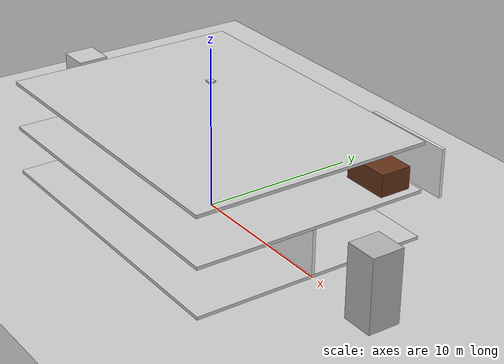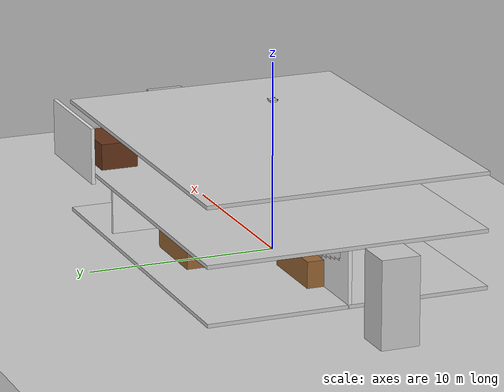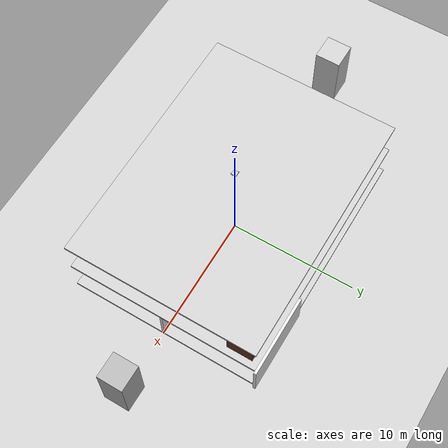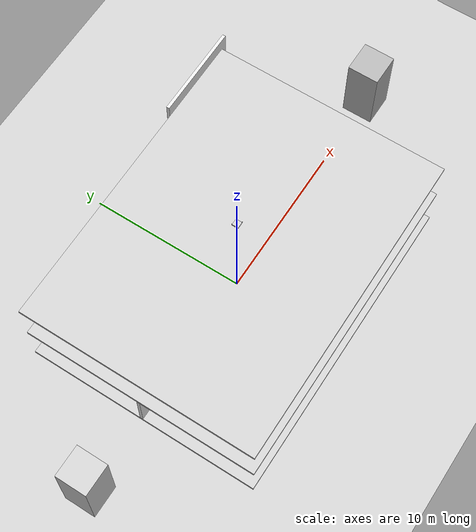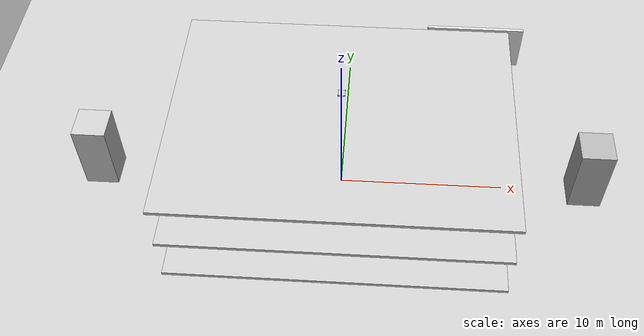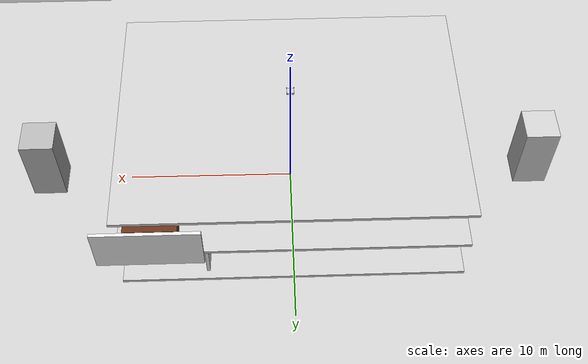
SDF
<?xml version="1.0"?>
<sdf version="1.6">
  <world name="office_building">
    <!-- Physics settings -->
    <physics name="default_physics" default="0" type="ode">
      <max_step_size>0.001</max_step_size>
      <real_time_factor>1</real_time_factor>
      <real_time_update_rate>1000</real_time_update_rate>
      <gravity>0 0 -9.81</gravity>
    </physics>

    <!-- Lighting -->
    <include>
      <uri>model://sun</uri>
    </include>

    <!-- Ground plane -->
    <include>
      <uri>model://ground_plane</uri>
    </include>

    <!-- Office Building Structure -->

    <!-- Ground Floor -->
    <!-- Main Lobby -->
    <model name="lobby_floor">
      <pose>0 0 0.1 0 0 0</pose>
      <link name="lobby_floor_link">
        <collision name="collision">
          <geometry>
            <box>
              <size>20 15 0.2</size>
            </box>
          </geometry>
        </collision>
        <visual name="visual">
          <geometry>
            <box>
              <size>20 15 0.2</size>
            </box>
          </geometry>
          <material>
            <ambient>0.8 0.8 0.8 1</ambient>
            <diffuse>0.8 0.8 0.8 1</diffuse>
          </material>
        </visual>
      </link>
    </model>

    <!-- Lobby Walls -->
    <model name="lobby_walls">
      <pose>0 0 1.5 0 0 0</pose>
      <link name="lobby_walls_link">
        <collision name="collision">
          <geometry>
            <box>
              <size>20 0.2 3</size>
            </box>
          </geometry>
        </collision>
        <visual name="visual">
          <geometry>
            <box>
              <size>20 0.2 3</size>
            </box>
          </geometry>
          <material>
            <ambient>0.9 0.9 0.9 1</ambient>
            <diffuse>0.9 0.9 0.9 1</diffuse>
          </material>
        </visual>
      </link>
    </model>

    <!-- Reception Desk -->
    <model name="reception_desk">
      <pose>0 5 0.8 0 0 0</pose>
      <link name="desk_link">
        <collision name="collision">
          <geometry>
            <box>
              <size>4 1 1.6</size>
            </box>
          </geometry>
        </collision>
        <visual name="visual">
          <geometry>
            <box>
              <size>4 1 1.6</size>
            </box>
          </geometry>
          <material>
            <ambient>0.6 0.4 0.2 1</ambient>
            <diffuse>0.6 0.4 0.2 1</diffuse>
          </material>
        </visual>
      </link>
    </model>

    <!-- First Floor -->
    <!-- Office Floor -->
    <model name="first_floor">
      <pose>0 0 3.1 0 0 0</pose>
      <link name="first_floor_link">
        <collision name="collision">
          <geometry>
            <box>
              <size>20 15 0.2</size>
            </box>
          </geometry>
        </collision>
        <visual name="visual">
          <geometry>
            <box>
              <size>20 15 0.2</size>
            </box>
          </geometry>
          <material>
            <ambient>0.8 0.8 0.8 1</ambient>
            <diffuse>0.8 0.8 0.8 1</diffuse>
          </material>
        </visual>
      </link>
    </model>

    <!-- Office Rooms -->
    <model name="office_room_1">
      <pose>5 5 1.5 0 0 0</pose>
      <link name="office_wall_1">
        <collision name="collision">
          <geometry>
            <box>
              <size>0.2 4 3</size>
            </box>
          </geometry>
        </collision>
        <visual name="visual">
          <geometry>
            <box>
              <size>0.2 4 3</size>
            </box>
          </geometry>
          <material>
            <ambient>0.9 0.9 0.9 1</ambient>
            <diffuse>0.9 0.9 0.9 1</diffuse>
          </material>
        </visual>
      </link>
    </model>

    <!-- Office Desk -->
    <model name="office_desk_1">
      <pose>5 3 0.8 0 0 0</pose>
      <link name="desk_link">
        <collision name="collision">
          <geometry>
            <box>
              <size>2 1 1.6</size>
            </box>
          </geometry>
        </collision>
        <visual name="visual">
          <geometry>
            <box>
              <size>2 1 1.6</size>
            </box>
          </geometry>
          <material>
            <ambient>0.6 0.4 0.2 1</ambient>
            <diffuse>0.6 0.4 0.2 1</diffuse>
          </material>
        </visual>
      </link>
    </model>

    <!-- Conference Room -->
    <model name="conference_room">
      <pose>-5 0 1.5 0 0 0</pose>
      <link name="conference_wall_1">
        <collision name="collision">
          <geometry>
            <box>
              <size>8 0.2 3</size>
            </box>
          </geometry>
        </collision>
        <visual name="visual">
          <geometry>
            <box>
              <size>8 0.2 3</size>
            </box>
          </geometry>
          <material>
            <ambient>0.9 0.9 0.9 1</ambient>
            <diffuse>0.9 0.9 0.9 1</diffuse>
          </material>
        </visual>
      </link>
    </model>

    <!-- Conference Table -->
    <model name="conference_table">
      <pose>-5 0 0.8 0 0 0</pose>
      <link name="table_link">
        <collision name="collision">
          <geometry>
            <box>
              <size>4 2 1.6</size>
            </box>
          </geometry>
        </collision>
        <visual name="visual">
          <geometry>
            <box>
              <size>4 2 1.6</size>
            </box>
          </geometry>
          <material>
            <ambient>0.6 0.4 0.2 1</ambient>
            <diffuse>0.6 0.4 0.2 1</diffuse>
          </material>
        </visual>
      </link>
    </model>

    <!-- Second Floor -->
    <!-- Executive Floor -->
    <model name="second_floor">
      <pose>0 0 6.1 0 0 0</pose>
      <link name="second_floor_link">
        <collision name="collision">
          <geometry>
            <box>
              <size>20 15 0.2</size>
            </box>
          </geometry>
        </collision>
        <visual name="visual">
          <geometry>
            <box>
              <size>20 15 0.2</size>
            </box>
          </geometry>
          <material>
            <ambient>0.8 0.8 0.8 1</ambient>
            <diffuse>0.8 0.8 0.8 1</diffuse>
          </material>
        </visual>
      </link>
    </model>

    <!-- Executive Office -->
    <model name="executive_office">
      <pose>8 8 4.5 0 0 0</pose>
      <link name="executive_wall_1">
        <collision name="collision">
          <geometry>
            <box>
              <size>6 0.2 3</size>
            </box>
          </geometry>
        </collision>
        <visual name="visual">
          <geometry>
            <box>
              <size>6 0.2 3</size>
            </box>
          </geometry>
          <material>
            <ambient>0.9 0.9 0.9 1</ambient>
            <diffuse>0.9 0.9 0.9 1</diffuse>
          </material>
        </visual>
      </link>
    </model>

    <!-- Executive Desk -->
    <model name="executive_desk">
      <pose>8 6 3.8 0 0 0</pose>
      <link name="executive_desk_link">
        <collision name="collision">
          <geometry>
            <box>
              <size>3 2 1.6</size>
            </box>
          </geometry>
        </collision>
        <visual name="visual">
          <geometry>
            <box>
              <size>3 2 1.6</size>
            </box>
          </geometry>
          <material>
            <ambient>0.4 0.2 0.1 1</ambient>
            <diffuse>0.4 0.2 0.1 1</diffuse>
          </material>
        </visual>
      </link>
    </model>

    <!-- Stairwell -->
    <model name="stairwell">
      <pose>15 0 1.5 0 0 0</pose>
      <link name="stairwell_wall">
        <collision name="collision">
          <geometry>
            <box>
              <size>2 2 6</size>
            </box>
          </geometry>
        </collision>
        <visual name="visual">
          <geometry>
            <box>
              <size>2 2 6</size>
            </box>
          </geometry>
          <material>
            <ambient>0.7 0.7 0.7 1</ambient>
            <diffuse>0.7 0.7 0.7 1</diffuse>
          </material>
        </visual>
      </link>
    </model>

    <!-- Elevator -->
    <model name="elevator">
      <pose>-15 0 1.5 0 0 0</pose>
      <link name="elevator_wall">
        <collision name="collision">
          <geometry>
            <box>
              <size>2 2 6</size>
            </box>
          </geometry>
        </collision>
        <visual name="visual">
          <geometry>
            <box>
              <size>2 2 6</size>
            </box>
          </geometry>
          <material>
            <ambient>0.8 0.8 0.8 1</ambient>
            <diffuse>0.8 0.8 0.8 1</diffuse>
          </material>
        </visual>
      </link>
    </model>

    <!-- Lighting -->
    <!-- Ceiling Lights -->
    <model name="ceiling_light_1">
      <pose>0 0 5.5 0 0 0</pose>
      <link name="light_link">
        <visual name="visual">
          <geometry>
            <sphere>
              <radius>0.5</radius>
            </sphere>
          </geometry>
          <material>
            <ambient>1 1 1 1</ambient>
            <diffuse>1 1 1 1</diffuse>
            <emissive>1 1 1 1</emissive>
          </material>
        </visual>
      </link>
      <light type="point" name="ceiling_light_1">
        <pose>0 0 0 0 0 0</pose>
        <diffuse>1 1 1 1</diffuse>
        <specular>0.1 0.1 0.1 1</specular>
        <attenuation>
          <range>10</range>
          <constant>0.5</constant>
          <linear>0.01</linear>
          <quadratic>0.001</quadratic>
        </attenuation>
        <cast_shadows>true</cast_shadows>
      </light>
    </model>

    <!-- Spawn quadcopter -->
    <include>
      <uri>model://quadcopter</uri>
      <pose>0 0 8 0 0 0</pose>
    </include>

    <!-- GUI settings -->
    <gui fullscreen='0'>
      <camera name='user_camera'>
        <pose>20 -20 15 0 0.785 0.785</pose>
        <view_controller>orbit</view_controller>
        <projection_type>perspective</projection_type>
      </camera>
    </gui>

    <!-- Plugin for ROS 2 bridge -->
    <plugin name="gazebo_ros_state" filename="libgazebo_ros_state.so">
      <ros>
        <namespace>/gazebo</namespace>
        <remapping>model_states:=model_states</remapping>
        <remapping>link_states:=link_states</remapping>
      </ros>
    </plugin>

    <!-- Plugin for ROS 2 control -->
    <plugin name="gazebo_ros_control" filename="libgazebo_ros_control.so">
      <robotNamespace>/quadcopter</robotNamespace>
      <robotParam>robot_description</robotParam>
    </plugin>
  </world>
</sdf>

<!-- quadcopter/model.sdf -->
<sdf version="1.6">
  <model name="quadcopter">
    <link name="base_link">
      <pose>0 0 0 0 0 0</pose>
      <inertial>
        <mass>1.5</mass>
        <inertia>
          <ixx>0.029125</ixx>
          <ixy>0</ixy>
          <ixz>0</ixz>
          <iyy>0.029125</iyy>
          <iyz>0</iyz>
          <izz>0.055225</izz>
        </inertia>
      </inertial>
      <collision name="collision">
        <geometry>
          <box>
            <size>0.4 0.4 0.1</size>
          </box>
        </geometry>
      </collision>
      <visual name="visual">
        <geometry>
          <box>
            <size>0.4 0.4 0.1</size>
          </box>
        </geometry>
        <material>
          <ambient>0.8 0.8 0.8 1</ambient>
          <diffuse>0.8 0.8 0.8 1</diffuse>
        </material>
      </visual>
    </link>

    <!-- Front Left Motor -->
    <link name="motor_fl">
      <pose>0.2 0.2 0.05 0 0 0</pose>
      <inertial>
        <mass>0.1</mass>
        <inertia>
          <ixx>0.001</ixx>
          <ixy>0</ixy>
          <ixz>0</ixz>
          <iyy>0.001</iyy>
          <iyz>0</iyz>
          <izz>0.001</izz>
        </inertia>
      </inertial>
      <collision name="collision">
        <geometry>
          <cylinder>
            <radius>0.02</radius>
            <length>0.05</length>
          </cylinder>
        </geometry>
      </collision>
      <visual name="visual">
        <geometry>
          <cylinder>
            <radius>0.02</radius>
            <length>0.05</length>
          </cylinder>
        </geometry>
        <material>
          <ambient>0.2 0.2 0.2 1</ambient>
          <diffuse>0.2 0.2 0.2 1</diffuse>
        </material>
      </visual>
    </link>

    <!-- Front Right Motor -->
    <link name="motor_fr">
      <pose>-0.2 0.2 0.05 0 0 0</pose>
      <inertial>
        <mass>0.1</mass>
        <inertia>
          <ixx>0.001</ixx>
          <ixy>0</ixy>
          <ixz>0</ixz>
          <iyy>0.001</iyy>
          <iyz>0</iyz>
          <izz>0.001</izz>
        </inertia>
      </inertial>
      <collision name="collision">
        <geometry>
          <cylinder>
            <radius>0.02</radius>
            <length>0.05</length>
          </cylinder>
        </geometry>
      </collision>
      <visual name="visual">
        <geometry>
          <cylinder>
            <radius>0.02</radius>
            <length>0.05</length>
          </cylinder>
        </geometry>
        <material>
          <ambient>0.2 0.2 0.2 1</ambient>
          <diffuse>0.2 0.2 0.2 1</diffuse>
        </material>
      </visual>
    </link>

    <!-- Rear Left Motor -->
    <link name="motor_rl">
      <pose>0.2 -0.2 0.05 0 0 0</pose>
      <inertial>
        <mass>0.1</mass>
        <inertia>
          <ixx>0.001</ixx>
          <ixy>0</ixy>
          <ixz>0</ixz>
          <iyy>0.001</iyy>
          <iyz>0</iyz>
          <izz>0.001</izz>
        </inertia>
      </inertial>
      <collision name="collision">
        <geometry>
          <cylinder>
            <radius>0.02</radius>
            <length>0.05</length>
          </cylinder>
        </geometry>
      </collision>
      <visual name="visual">
        <geometry>
          <cylinder>
            <radius>0.02</radius>
            <length>0.05</length>
          </cylinder>
        </geometry>
        <material>
          <ambient>0.2 0.2 0.2 1</ambient>
          <diffuse>0.2 0.2 0.2 1</diffuse>
        </material>
      </visual>
    </link>

    <!-- Rear Right Motor -->
    <link name="motor_rr">
      <pose>-0.2 -0.2 0.05 0 0 0</pose>
      <inertial>
        <mass>0.1</mass>
        <inertia>
          <ixx>0.001</ixx>
          <ixy>0</ixy>
          <ixz>0</ixz>
          <iyy>0.001</iyy>
          <iyz>0</iyz>
          <izz>0.001</izz>
        </inertia>
      </inertial>
      <collision name="collision">
        <geometry>
          <cylinder>
            <radius>0.02</radius>
            <length>0.05</length>
          </cylinder>
        </geometry>
      </collision>
      <visual name="visual">
        <geometry>
          <cylinder>
            <radius>0.02</radius>
            <length>0.05</length>
          </cylinder>
        </geometry>
        <material>
          <ambient>0.2 0.2 0.2 1</ambient>
          <diffuse>0.2 0.2 0.2 1</diffuse>
        </material>
      </visual>
    </link>

    <!-- IMU Sensor -->
    <link name="imu_link">
      <pose>0 0 0.05 0 0 0</pose>
      <sensor name="imu_sensor" type="imu">
        <always_on>true</always_on>
        <update_rate>100</update_rate>
        <visualize>true</visualize>
        <topic>quadcopter/sensors/imu</topic>
        <frame_name>imu_link</frame_name>
        <ros>
          <namespace>/quadcopter</namespace>
          <remapping>sensors/imu:=sensors/imu</remapping>
        </ros>
      </sensor>
    </link>

    <!-- GPS Sensor -->
    <link name="gps_link">
      <pose>0 0 0.05 0 0 0</pose>
      <sensor name="gps_sensor" type="gps">
        <always_on>true</always_on>
        <update_rate>10</update_rate>
        <visualize>true</visualize>
        <topic>quadcopter/sensors/gps</topic>
        <frame_name>gps_link</frame_name>
        <ros>
          <namespace>/quadcopter</namespace>
          <remapping>sensors/gps:=sensors/gps</remapping>
        </ros>
      </sensor>
    </link>

    <!-- Altitude Sensor -->
    <link name="altitude_link">
      <pose>0 0 -0.05 0 0 0</pose>
      <sensor name="altitude_sensor" type="ray">
        <always_on>true</always_on>
        <update_rate>50</update_rate>
        <visualize>true</visualize>
        <topic>quadcopter/sensors/altitude</topic>
        <frame_name>altitude_link</frame_name>
        <ray>
          <scan>
            <horizontal>
              <samples>1</samples>
              <resolution>1</resolution>
              <min_angle>0</min_angle>
              <max_angle>0</max_angle>
            </horizontal>
          </scan>
          <range>
            <min>0.1</min>
            <max>50</max>
            <resolution>0.01</resolution>
          </range>
        </ray>
        <ros>
          <namespace>/quadcopter</namespace>
          <remapping>sensors/altitude:=sensors/altitude</remapping>
        </ros>
      </sensor>
    </link>

    <!-- Joints -->
    <joint name="motor_fl_joint" type="revolute">
      <parent>base_link</parent>
      <child>motor_fl</child>
      <axis>
        <xyz>0 0 1</xyz>
      </axis>
    </joint>

    <joint name="motor_fr_joint" type="revolute">
      <parent>base_link</parent>
      <child>motor_fr</child>
      <axis>
        <xyz>0 0 1</xyz>
      </axis>
    </joint>

    <joint name="motor_rl_joint" type="revolute">
      <parent>base_link</parent>
      <child>motor_rl</child>
      <axis>
        <xyz>0 0 1</xyz>
      </axis>
    </joint>

    <joint name="motor_rr_joint" type="revolute">
      <parent>base_link</parent>
      <child>motor_rr</child>
      <axis>
        <xyz>0 0 1</xyz>
      </axis>
    </joint>

    <joint name="imu_joint" type="fixed">
      <parent>base_link</parent>
      <child>imu_link</child>
    </joint>

    <joint name="gps_joint" type="fixed">
      <parent>base_link</parent>
      <child>gps_link</child>
    </joint>

    <joint name="altitude_joint" type="fixed">
      <parent>base_link</parent>
      <child>altitude_link</child>
    </joint>

    <!-- Plugin for quadcopter dynamics -->
    <plugin name="quadcopter_plugin" filename="libgazebo_ros_planar_move.so">
      <commandTopic>quadcopter/control/velocity</commandTopic>
      <odometryTopic>quadcopter/state/odometry</odometryTopic>
      <odometryFrame>odom</odometryFrame>
      <odometryRate>20</odometryRate>
      <robotBaseFrame>base_link</robotBaseFrame>
    </plugin>

    <!-- Plugin for motor control -->
    <plugin name="motor_controller" filename="libgazebo_ros_force.so">
      <bodyName>base_link</bodyName>
      <topicName>quadcopter/control/motors</topicName>
    </plugin>
  </model>
</sdf>
